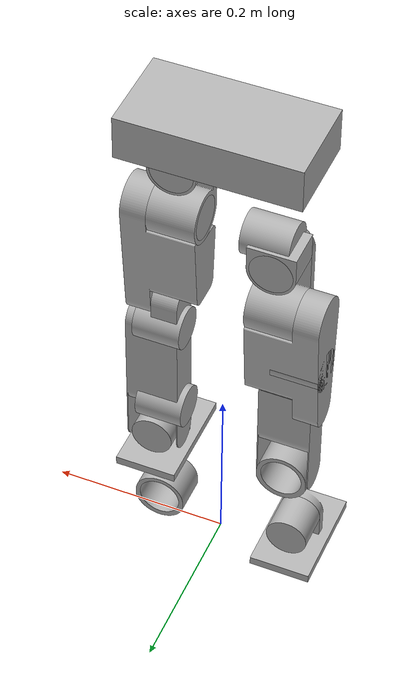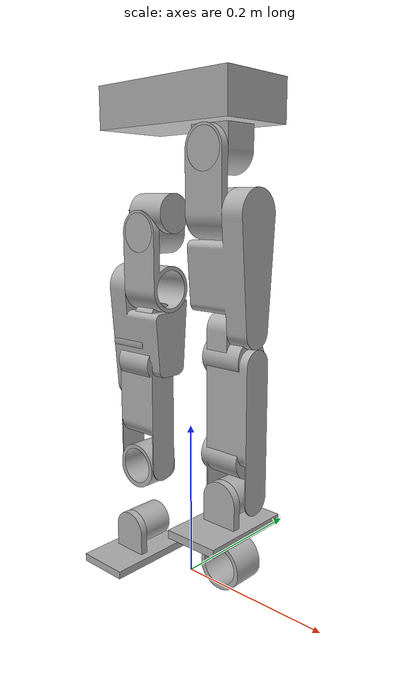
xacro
<?xml version="1.0" ?>
<robot name="URDF_F" xmlns:xacro="http://www.ros.org/wiki/xacro">

<xacro:include filename="$(find URDF_F_description)/urdf/materials.xacro" />
<xacro:include filename="$(find URDF_F_description)/urdf/URDF_F.trans" />
<xacro:include filename="$(find URDF_F_description)/urdf/URDF_F.gazebo" />
<link name="base_link">
  <inertial>
    <origin xyz="-0.009999999999993764 0.0029999999999999498 0.491999999999998" rpy="0 0 0"/>
    <mass value="1.9999999999999996"/>
    <inertia ixx="0.002083" iyy="0.007083" izz="0.008333" ixy="0.0" iyz="0.0" ixz="0.0"/>
  </inertial>
  <visual>
    <origin xyz="0 0 0" rpy="0 0 0"/>
    <geometry>
      <mesh filename="file://$(find URDF_F_description)/meshes/base_link.stl" scale="0.001 0.001 0.001"/>
    </geometry>
    <material name="silver"/>
  </visual>
  <collision>
    <origin xyz="0 0 0" rpy="0 0 0"/>
    <geometry>
      <mesh filename="file://$(find URDF_F_description)/meshes/base_link.stl" scale="0.001 0.001 0.001"/>
    </geometry>
  </collision>
</link>

<link name="thighJR_L_1">
  <inertial>
    <origin xyz="0.06000000000000488 -0.0030000000000000564 -0.4857321228340379" rpy="0 0 0"/>
    <mass value="0.06"/>
    <inertia ixx="2.9e-05" iyy="4.2e-05" izz="3.3e-05" ixy="-0.0" iyz="0.0" ixz="0.0"/>
  </inertial>
  <visual>
    <origin xyz="0.02 -0.006 -0.934" rpy="0 0 0"/>
    <geometry>
      <mesh filename="file://$(find URDF_F_description)/meshes/thighJR_L_1.stl" scale="0.001 0.001 0.001"/>
    </geometry>
    <material name="silver"/>
  </visual>
  <collision>
    <origin xyz="0.02 -0.006 -0.934" rpy="0 0 0"/>
    <geometry>
      <mesh filename="file://$(find URDF_F_description)/meshes/thighJR_L_1.stl" scale="0.001 0.001 0.001"/>
    </geometry>
  </collision>
</link>

<link name="AK45-36_trL_1">
  <inertial>
    <origin xyz="-0.03999999999999455 0.013999999999999964 -0.4670000000000036" rpy="0 0 0"/>
    <mass value="0.34"/>
    <inertia ixx="0.000132" iyy="0.000099" izz="0.000132" ixy="-0.0" iyz="0.0" ixz="0.0"/>
  </inertial>
  <visual>
    <origin xyz="-0.08 0.016 -0.907" rpy="0 0 0"/>
    <geometry>
      <mesh filename="file://$(find URDF_F_description)/meshes/AK45-36_trL_1.stl" scale="0.001 0.001 0.001"/>
    </geometry>
    <material name="silver"/>
  </visual>
  <collision>
    <origin xyz="-0.08 0.016 -0.907" rpy="0 0 0"/>
    <geometry>
      <mesh filename="file://$(find URDF_F_description)/meshes/AK45-36_trL_1.stl" scale="0.001 0.001 0.001"/>
    </geometry>
  </collision>
</link>

<link name="thigh_L_1">
  <inertial>
    <origin xyz="-0.00539746230814965 0.00038172214782945324 -0.059989569173891755" rpy="0 0 0"/>
    <mass value="0.5"/>
    <inertia ixx="0.000862" iyy="0.001054" izz="0.000388" ixy="3.9e-06" iyz="-6.7e-06" ixz="-6.4e-05"/>
  </inertial>
  <visual>
    <origin xyz="-0.067 0.0 -0.37" rpy="0 0 0"/>
    <geometry>
      <mesh filename="file://$(find URDF_F_description)/meshes/thigh_L_1.stl" scale="0.001 0.001 0.001"/>
    </geometry>
    <material name="silver"/>
  </visual>
  <collision>
    <origin xyz="-0.067 0.0 -0.37" rpy="0 0 0"/>
    <geometry>
      <mesh filename="file://$(find URDF_F_description)/meshes/thigh_L_1.stl" scale="0.001 0.001 0.001"/>
    </geometry>
  </collision>
</link>

<link name="AK45-36_kpL_1">
  <inertial>
    <origin xyz="-0.09400000000000365 -5.800915303664527e-17 -0.43961500000000436" rpy="0 0 0"/>
    <mass value="0.4"/>
    <inertia ixx="0.000116" iyy="0.000155" izz="0.000155" ixy="-0.0" iyz="0.0" ixz="0.0"/>
  </inertial>
  <visual>
    <origin xyz="-0.16275 0.0 -0.739615" rpy="0 0 0"/>
    <geometry>
      <mesh filename="file://$(find URDF_F_description)/meshes/AK45-36_kpL_1.stl" scale="0.001 0.001 0.001"/>
    </geometry>
    <material name="silver"/>
  </visual>
  <collision>
    <origin xyz="-0.16275 0.0 -0.739615" rpy="0 0 0"/>
    <geometry>
      <mesh filename="file://$(find URDF_F_description)/meshes/AK45-36_kpL_1.stl" scale="0.001 0.001 0.001"/>
    </geometry>
  </collision>
</link>

<link name="calf_L_1">
  <inertial>
    <origin xyz="-0.0018470097395003188 -8.38633090922969e-17 -0.08050979935301991" rpy="0 0 0"/>
    <mass value="0.5"/>
    <inertia ixx="0.001191" iyy="0.00129" izz="0.000211" ixy="-0.0" iyz="0.0" ixz="7.1e-05"/>
  </inertial>
  <visual>
    <origin xyz="-0.067 0.0 -0.24" rpy="0 0 0"/>
    <geometry>
      <mesh filename="file://$(find URDF_F_description)/meshes/calf_L_1.stl" scale="0.001 0.001 0.001"/>
    </geometry>
    <material name="silver"/>
  </visual>
  <collision>
    <origin xyz="-0.067 0.0 -0.24" rpy="0 0 0"/>
    <geometry>
      <mesh filename="file://$(find URDF_F_description)/meshes/calf_L_1.stl" scale="0.001 0.001 0.001"/>
    </geometry>
  </collision>
</link>

<link name="footJ_L_1">
  <inertial>
    <origin xyz="-1.4627188349436437e-14 -1.072264026970011e-16 -0.0022808396255029964" rpy="0 0 0"/>
    <mass value="0.06"/>
    <inertia ixx="3.1e-05" iyy="4.2e-05" izz="3.1e-05" ixy="-0.0" iyz="-0.0" ixz="0.0"/>
  </inertial>
  <visual>
    <origin xyz="-0.067 0.0 -0.04" rpy="0 0 0"/>
    <geometry>
      <mesh filename="file://$(find URDF_F_description)/meshes/footJ_L_1.stl" scale="0.001 0.001 0.001"/>
    </geometry>
    <material name="silver"/>
  </visual>
  <collision>
    <origin xyz="-0.067 0.0 -0.04" rpy="0 0 0"/>
    <geometry>
      <mesh filename="file://$(find URDF_F_description)/meshes/footJ_L_1.stl" scale="0.001 0.001 0.001"/>
    </geometry>
  </collision>
</link>

<link name="AK45-10_frL_1">
  <inertial>
    <origin xyz="-1.457167719820518e-14 -9.643358654519792e-17 7.077671781985373e-16" rpy="0 0 0"/>
    <mass value="0.24"/>
    <inertia ixx="7.7e-05" iyy="7.4e-05" izz="7.7e-05" ixy="0.0" iyz="0.0" ixz="-0.0"/>
  </inertial>
  <visual>
    <origin xyz="-0.067 0.0 -0.04" rpy="0 0 0"/>
    <geometry>
      <mesh filename="file://$(find URDF_F_description)/meshes/AK45-10_frL_1.stl" scale="0.001 0.001 0.001"/>
    </geometry>
    <material name="silver"/>
  </visual>
  <collision>
    <origin xyz="-0.067 0.0 -0.04" rpy="0 0 0"/>
    <geometry>
      <mesh filename="file://$(find URDF_F_description)/meshes/AK45-10_frL_1.stl" scale="0.001 0.001 0.001"/>
    </geometry>
  </collision>
</link>

<link name="foot_L_1">
  <inertial>
    <origin xyz="-1.5459855617905305e-14 9.755025872117476e-05 -0.028610141842179894" rpy="0 0 0"/>
    <mass value="0.3"/>
    <inertia ixx="0.00035" iyy="0.000168" izz="0.0004" ixy="0.0" iyz="1e-05" ixz="0.0"/>
  </inertial>
  <visual>
    <origin xyz="-0.067 0.0215 -0.04" rpy="0 0 0"/>
    <geometry>
      <mesh filename="file://$(find URDF_F_description)/meshes/foot_L_1.stl" scale="0.001 0.001 0.001"/>
    </geometry>
    <material name="silver"/>
  </visual>
  <collision>
    <origin xyz="-0.067 0.0215 -0.04" rpy="0 0 0"/>
    <geometry>
      <mesh filename="file://$(find URDF_F_description)/meshes/foot_L_1.stl" scale="0.001 0.001 0.001"/>
    </geometry>
  </collision>
</link>

<link name="thighJ_L_1">
  <inertial>
    <origin xyz="3.677613769070831e-15 0.020776165475540002 -0.056454508231575606" rpy="0 0 0"/>
    <mass value="0.06"/>
    <inertia ixx="6.7e-05" iyy="6e-05" izz="3.9e-05" ixy="0.0" iyz="1.3e-05" ixz="-0.0"/>
  </inertial>
  <visual>
    <origin xyz="-0.04 0.029 -0.44" rpy="0 0 0"/>
    <geometry>
      <mesh filename="file://$(find URDF_F_description)/meshes/thighJ_L_1.stl" scale="0.001 0.001 0.001"/>
    </geometry>
    <material name="silver"/>
  </visual>
  <collision>
    <origin xyz="-0.04 0.029 -0.44" rpy="0 0 0"/>
    <geometry>
      <mesh filename="file://$(find URDF_F_description)/meshes/thighJ_L_1.stl" scale="0.001 0.001 0.001"/>
    </geometry>
  </collision>
</link>

<link name="AK45-36_tpL_1">
  <inertial>
    <origin xyz="-3.642919299551295e-15 -4.371503159459072e-17 -3.3306690738754696e-15" rpy="0 0 0"/>
    <mass value="0.34"/>
    <inertia ixx="0.000099" iyy="0.000132" izz="0.000132" ixy="-0.0" iyz="0.0" ixz="0.0"/>
  </inertial>
  <visual>
    <origin xyz="-0.04 0.0 -0.37" rpy="0 0 0"/>
    <geometry>
      <mesh filename="file://$(find URDF_F_description)/meshes/AK45-36_tpL_1.stl" scale="0.001 0.001 0.001"/>
    </geometry>
    <material name="silver"/>
  </visual>
  <collision>
    <origin xyz="-0.04 0.0 -0.37" rpy="0 0 0"/>
    <geometry>
      <mesh filename="file://$(find URDF_F_description)/meshes/AK45-36_tpL_1.stl" scale="0.001 0.001 0.001"/>
    </geometry>
  </collision>
</link>

<link name="AK45-36_fpL_1">
  <inertial>
    <origin xyz="-0.037076000000005466 -7.299716386909578e-17 -0.30000000000000426" rpy="0 0 0"/>
    <mass value="0.4"/>
    <inertia ixx="0.000116" iyy="0.000155" izz="0.000155" ixy="-0.0" iyz="0.0" ixz="0.0"/>
  </inertial>
  <visual>
    <origin xyz="-0.104076 0.0 -0.48" rpy="0 0 0"/>
    <geometry>
      <mesh filename="file://$(find URDF_F_description)/meshes/AK45-36_fpL_1.stl" scale="0.001 0.001 0.001"/>
    </geometry>
    <material name="silver"/>
  </visual>
  <collision>
    <origin xyz="-0.104076 0.0 -0.48" rpy="0 0 0"/>
    <geometry>
      <mesh filename="file://$(find URDF_F_description)/meshes/AK45-36_fpL_1.stl" scale="0.001 0.001 0.001"/>
    </geometry>
  </collision>
</link>

<link name="thighJR_R_1">
  <inertial>
    <origin xyz="-0.039999999999994526 -0.0030000000000000296 -0.48573212283403633" rpy="0 0 0"/>
    <mass value="0.06"/>
    <inertia ixx="2.9e-05" iyy="4.2e-05" izz="3.3e-05" ixy="-0.0" iyz="0.0" ixz="-0.0"/>
  </inertial>
  <visual>
    <origin xyz="0.02 -0.006 -0.934" rpy="0 0 0"/>
    <geometry>
      <mesh filename="file://$(find URDF_F_description)/meshes/thighJR_R_1.stl" scale="0.001 0.001 0.001"/>
    </geometry>
    <material name="silver"/>
  </visual>
  <collision>
    <origin xyz="0.02 -0.006 -0.934" rpy="0 0 0"/>
    <geometry>
      <mesh filename="file://$(find URDF_F_description)/meshes/thighJR_R_1.stl" scale="0.001 0.001 0.001"/>
    </geometry>
  </collision>
</link>

<link name="AK45-36_trR_1">
  <inertial>
    <origin xyz="0.06000000000000547 0.013999999999999986 -0.46700000000000214" rpy="0 0 0"/>
    <mass value="0.34"/>
    <inertia ixx="0.000132" iyy="0.000099" izz="0.000132" ixy="-0.0" iyz="0.0" ixz="0.0"/>
  </inertial>
  <visual>
    <origin xyz="0.12 0.016 -0.907" rpy="0 0 0"/>
    <geometry>
      <mesh filename="file://$(find URDF_F_description)/meshes/AK45-36_trR_1.stl" scale="0.001 0.001 0.001"/>
    </geometry>
    <material name="silver"/>
  </visual>
  <collision>
    <origin xyz="0.12 0.016 -0.907" rpy="0 0 0"/>
    <geometry>
      <mesh filename="file://$(find URDF_F_description)/meshes/AK45-36_trR_1.stl" scale="0.001 0.001 0.001"/>
    </geometry>
  </collision>
</link>

<link name="thigh_R_1">
  <inertial>
    <origin xyz="0.005397462308149595 0.000381722147829493 -0.05998956917388981" rpy="0 0 0"/>
    <mass value="0.5203598167159027"/>
    <inertia ixx="0.000862" iyy="0.001054" izz="0.000388" ixy="-3.9e-06" iyz="-6.7e-06" ixz="6.4e-05"/>
  </inertial>
  <visual>
    <origin xyz="0.087 0.0 -0.37" rpy="0 0 0"/>
    <geometry>
      <mesh filename="file://$(find URDF_F_description)/meshes/thigh_R_1.stl" scale="0.001 0.001 0.001"/>
    </geometry>
    <material name="silver"/>
  </visual>
  <collision>
    <origin xyz="0.087 0.0 -0.37" rpy="0 0 0"/>
    <geometry>
      <mesh filename="file://$(find URDF_F_description)/meshes/thigh_R_1.stl" scale="0.001 0.001 0.001"/>
    </geometry>
  </collision>
</link>

<link name="AK45-36_kpR_1">
  <inertial>
    <origin xyz="0.11400000000000549 -1.804112415013964e-17 -0.44000000000000217" rpy="0 0 0"/>
    <mass value="0.4"/>
    <inertia ixx="0.000116" iyy="0.000155" izz="0.000155" ixy="0.0" iyz="0.0" ixz="-0.0"/>
  </inertial>
  <visual>
    <origin xyz="0.20275 0.0 -0.74" rpy="0 0 0"/>
    <geometry>
      <mesh filename="file://$(find URDF_F_description)/meshes/AK45-36_kpR_1.stl" scale="0.001 0.001 0.001"/>
    </geometry>
    <material name="silver"/>
  </visual>
  <collision>
    <origin xyz="0.20275 0.0 -0.74" rpy="0 0 0"/>
    <geometry>
      <mesh filename="file://$(find URDF_F_description)/meshes/AK45-36_kpR_1.stl" scale="0.001 0.001 0.001"/>
    </geometry>
  </collision>
</link>

<link name="calf_R_1">
  <inertial>
    <origin xyz="0.0018470097394886892 -9.39645718218383e-18 -0.08050979935301789" rpy="0 0 0"/>
    <mass value="0.7036237937535099"/>
    <inertia ixx="0.001191" iyy="0.00129" izz="0.000211" ixy="0.0" iyz="0.0" ixz="-7.1e-05"/>
  </inertial>
  <visual>
    <origin xyz="0.087 0.0 -0.24" rpy="0 0 0"/>
    <geometry>
      <mesh filename="file://$(find URDF_F_description)/meshes/calf_R_1.stl" scale="0.001 0.001 0.001"/>
    </geometry>
    <material name="silver"/>
  </visual>
  <collision>
    <origin xyz="0.087 0.0 -0.24" rpy="0 0 0"/>
    <geometry>
      <mesh filename="file://$(find URDF_F_description)/meshes/calf_R_1.stl" scale="0.001 0.001 0.001"/>
    </geometry>
  </collision>
</link>

<link name="AK45-36_fpR_1">
  <inertial>
    <origin xyz="0.05699999999999819 -1.5265566588587645e-17 -0.30000000000000215" rpy="0 0 0"/>
    <mass value="0.4"/>
    <inertia ixx="0.000116" iyy="0.000155" izz="0.000155" ixy="0.0" iyz="0.0" ixz="0.0"/>
  </inertial>
  <visual>
    <origin xyz="0.144 0.0 -0.48" rpy="0 0 0"/>
    <geometry>
      <mesh filename="file://$(find URDF_F_description)/meshes/AK45-36_fpR_1.stl" scale="0.001 0.001 0.001"/>
    </geometry>
    <material name="silver"/>
  </visual>
  <collision>
    <origin xyz="0.144 0.0 -0.48" rpy="0 0 0"/>
    <geometry>
      <mesh filename="file://$(find URDF_F_description)/meshes/AK45-36_fpR_1.stl" scale="0.001 0.001 0.001"/>
    </geometry>
  </collision>
</link>

<link name="footJ_R_1">
  <inertial>
    <origin xyz="-1.8041124150158794e-15 -1.812923782858116e-17 -0.0022808396255108096" rpy="0 0 0"/>
    <mass value="0.06"/>
    <inertia ixx="3.1e-05" iyy="4.2e-05" izz="3.1e-05" ixy="-0.0" iyz="-0.0" ixz="0.0"/>
  </inertial>
  <visual>
    <origin xyz="0.087 0.0 -0.04" rpy="0 0 0"/>
    <geometry>
      <mesh filename="file://$(find URDF_F_description)/meshes/footJ_R_1.stl" scale="0.001 0.001 0.001"/>
    </geometry>
    <material name="silver"/>
  </visual>
  <collision>
    <origin xyz="0.087 0.0 -0.04" rpy="0 0 0"/>
    <geometry>
      <mesh filename="file://$(find URDF_F_description)/meshes/footJ_R_1.stl" scale="0.001 0.001 0.001"/>
    </geometry>
  </collision>
</link>

<link name="AK45-10_R_1">
  <inertial>
    <origin xyz="-1.8041124150158794e-15 -7.615744575185394e-18 -7.098488463697095e-15" rpy="0 0 0"/>
    <mass value="0.24"/>
    <inertia ixx="7.7e-05" iyy="7.4e-05" izz="7.7e-05" ixy="0.0" iyz="-0.0" ixz="-0.0"/>
  </inertial>
  <visual>
    <origin xyz="0.087 0.0 -0.04" rpy="0 0 0"/>
    <geometry>
      <mesh filename="file://$(find URDF_F_description)/meshes/AK45-10_R_1.stl" scale="0.001 0.001 0.001"/>
    </geometry>
    <material name="silver"/>
  </visual>
  <collision>
    <origin xyz="0.087 0.0 -0.04" rpy="0 0 0"/>
    <geometry>
      <mesh filename="file://$(find URDF_F_description)/meshes/AK45-10_R_1.stl" scale="0.001 0.001 0.001"/>
    </geometry>
  </collision>
</link>

<link name="thighJ_R_1">
  <inertial>
    <origin xyz="5.460909502374989e-15 0.02077616547536233 -0.05645450823097037" rpy="0 0 0"/>
    <mass value="0.06"/>
    <inertia ixx="6.7e-05" iyy="6e-05" izz="3.9e-05" ixy="0.0" iyz="1.3e-05" ixz="0.0"/>
  </inertial>
  <visual>
    <origin xyz="0.06 0.029 -0.44" rpy="0 0 0"/>
    <geometry>
      <mesh filename="file://$(find URDF_F_description)/meshes/thighJ_R_1.stl" scale="0.001 0.001 0.001"/>
    </geometry>
    <material name="silver"/>
  </visual>
  <collision>
    <origin xyz="0.06 0.029 -0.44" rpy="0 0 0"/>
    <geometry>
      <mesh filename="file://$(find URDF_F_description)/meshes/thighJ_R_1.stl" scale="0.001 0.001 0.001"/>
    </geometry>
  </collision>
</link>

<link name="AK45-36_tpR_1">
  <inertial>
    <origin xyz="5.474787290182803e-15 -2.5951463200588205e-17 -2.1094237467877974e-15" rpy="0 0 0"/>
    <mass value="0.34"/>
    <inertia ixx="0.000099" iyy="0.000155" izz="0.000155" ixy="0.0" iyz="0.0" ixz="0.0"/>
  </inertial>
  <visual>
    <origin xyz="0.06 0.0 -0.37" rpy="0 0 0"/>
    <geometry>
      <mesh filename="file://$(find URDF_F_description)/meshes/AK45-36_tpR_1.stl" scale="0.001 0.001 0.001"/>
    </geometry>
    <material name="silver"/>
  </visual>
  <collision>
    <origin xyz="0.06 0.0 -0.37" rpy="0 0 0"/>
    <geometry>
      <mesh filename="file://$(find URDF_F_description)/meshes/AK45-36_tpR_1.stl" scale="0.001 0.001 0.001"/>
    </geometry>
  </collision>
</link>

<link name="foot_R_v1_1">
  <inertial>
    <origin xyz="-1.8041124150158794e-15 9.755025872120252e-05 -0.02861014184218772" rpy="0 0 0"/>
    <mass value="0.3"/>
    <inertia ixx="0.00035" iyy="0.000168" izz="0.0004" ixy="-0.0" iyz="1e-05" ixz="0.0"/>
  </inertial>
  <visual>
    <origin xyz="0.087 0.0215 -0.04" rpy="0 0 0"/>
    <geometry>
      <mesh filename="file://$(find URDF_F_description)/meshes/foot_R_v1_1.stl" scale="0.001 0.001 0.001"/>
    </geometry>
    <material name="silver"/>
  </visual>
  <collision>
    <origin xyz="0.087 0.0215 -0.04" rpy="0 0 0"/>
    <geometry>
      <mesh filename="file://$(find URDF_F_description)/meshes/foot_R_v1_1.stl" scale="0.001 0.001 0.001"/>
    </geometry>
  </collision>
</link>

<joint name="Rigid 12" type="fixed">
  <origin xyz="-0.02 0.006 0.934" rpy="0 0 0"/>
  <parent link="base_link"/>
  <child link="thighJR_L_1"/>
</joint>

<joint name="Rigid 14" type="fixed">
  <origin xyz="0.1 -0.022 -0.027" rpy="0 0 0"/>
  <parent link="thighJR_L_1"/>
  <child link="AK45-36_trL_1"/>
</joint>

<joint name="Revolute 19" type="revolute">
  <origin xyz="0.027 0.0 0.0" rpy="0 0 0"/>
  <parent link="AK45-36_tpL_1"/>
  <child link="thigh_L_1"/>
  <axis xyz="1.0 -0.0 -0.0"/>
  <limit upper="1.570796" lower="-1.570796" effort="100" velocity="100"/>
</joint>

<joint name="Rigid 20" type="fixed">
  <origin xyz="0.09575 0.0 0.369615" rpy="0 0 0"/>
  <parent link="thigh_L_1"/>
  <child link="AK45-36_kpL_1"/>
</joint>

<joint name="Revolute 21" type="revolute">
  <origin xyz="0.0 0.0 -0.13" rpy="0 0 0"/>
  <parent link="thigh_L_1"/>
  <child link="calf_L_1"/>
  <axis xyz="1.0 0.0 -0.0"/>
  <limit upper="1.570796" lower="-1.570796" effort="100" velocity="100"/>
</joint>

<joint name="Revolute 23" type="revolute">
  <origin xyz="0.0 0.0 -0.2" rpy="0 0 0"/>
  <parent link="calf_L_1"/>
  <child link="footJ_L_1"/>
  <axis xyz="1.0 -0.0 -0.0"/>
  <limit upper="1.570796" lower="-1.570796" effort="100" velocity="100"/>
</joint>

<joint name="Rigid 24" type="fixed">
  <origin xyz="0.0 0.0 0.0" rpy="0 0 0"/>
  <parent link="footJ_L_1"/>
  <child link="AK45-10_frL_1"/>
</joint>

<joint name="Revolute 25" type="revolute">
  <origin xyz="0.0 -0.0215 0.0" rpy="0 0 0"/>
  <parent link="AK45-10_frL_1"/>
  <child link="foot_L_1"/>
  <axis xyz="0.0 -1.0 0.0"/>
  <limit upper="1.570796" lower="-1.570796" effort="100" velocity="100"/>
</joint>

<joint name="Revolute 26" type="revolute">
  <origin xyz="-0.04 -0.013 -0.467" rpy="0 0 0"/>
  <parent link="AK45-36_trL_1"/>
  <child link="thighJ_L_1"/>
  <axis xyz="0.0 -1.0 -0.0"/>
  <limit upper="1.570796" lower="-1.570796" effort="100" velocity="100"/>
</joint>

<joint name="Rigid 27" type="fixed">
  <origin xyz="0.0 0.029 -0.07" rpy="0 0 0"/>
  <parent link="thighJ_L_1"/>
  <child link="AK45-36_tpL_1"/>
</joint>

<joint name="Rigid 35" type="fixed">
  <origin xyz="0.037076 0.0 0.24" rpy="0 0 0"/>
  <parent link="calf_L_1"/>
  <child link="AK45-36_fpL_1"/>
</joint>

<joint name="Rigid 40" type="fixed">
  <origin xyz="-0.02 0.006 0.934" rpy="0 0 0"/>
  <parent link="base_link"/>
  <child link="thighJR_R_1"/>
</joint>

<joint name="Rigid 41" type="fixed">
  <origin xyz="-0.1 -0.022 -0.027" rpy="0 0 0"/>
  <parent link="thighJR_R_1"/>
  <child link="AK45-36_trR_1"/>
</joint>

<joint name="Revolute 44" type="revolute">
  <origin xyz="-0.027 0.0 0.0" rpy="0 0 0"/>
  <parent link="AK45-36_tpR_1"/>
  <child link="thigh_R_1"/>
  <axis xyz="-1.0 -0.0 -0.0"/>
  <limit upper="1.570796" lower="-1.570796" effort="100" velocity="100"/>
</joint>

<joint name="Rigid 45" type="fixed">
  <origin xyz="-0.11575 0.0 0.37" rpy="0 0 0"/>
  <parent link="thigh_R_1"/>
  <child link="AK45-36_kpR_1"/>
</joint>

<joint name="Revolute 46" type="revolute">
  <origin xyz="0.0 0.0 -0.13" rpy="0 0 0"/>
  <parent link="thigh_R_1"/>
  <child link="calf_R_1"/>
  <axis xyz="1.0 0.0 0.0"/>
  <limit upper="1.570796" lower="-1.570796" effort="100" velocity="100"/>
</joint>

<joint name="Rigid 47" type="fixed">
  <origin xyz="-0.057 0.0 0.24" rpy="0 0 0"/>
  <parent link="calf_R_1"/>
  <child link="AK45-36_fpR_1"/>
</joint>

<joint name="Revolute 48" type="revolute">
  <origin xyz="0.0 0.0 -0.2" rpy="0 0 0"/>
  <parent link="calf_R_1"/>
  <child link="footJ_R_1"/>
  <axis xyz="-1.0 -0.0 -0.0"/>
  <limit upper="1.570796" lower="-1.570796" effort="100" velocity="100"/>
</joint>

<joint name="Rigid 49" type="fixed">
  <origin xyz="0.0 0.0 0.0" rpy="0 0 0"/>
  <parent link="footJ_R_1"/>
  <child link="AK45-10_R_1"/>
</joint>

<joint name="Revolute 51" type="revolute">
  <origin xyz="0.06 -0.013 -0.467" rpy="0 0 0"/>
  <parent link="AK45-36_trR_1"/>
  <child link="thighJ_R_1"/>
  <axis xyz="-0.0 -1.0 -0.0"/>
  <limit upper="1.570796" lower="-1.570796" effort="100" velocity="100"/>
</joint>

<joint name="Rigid 52" type="fixed">
  <origin xyz="0.0 0.029 -0.07" rpy="0 0 0"/>
  <parent link="thighJ_R_1"/>
  <child link="AK45-36_tpR_1"/>
</joint>

<joint name="Revolute 53" type="revolute">
  <origin xyz="0.0 -0.0215 0.0" rpy="0 0 0"/>
  <parent link="AK45-10_R_1"/>
  <child link="foot_R_v1_1"/>
  <axis xyz="-0.0 -1.0 -0.0"/>
  <limit upper="1.570796" lower="-1.570796" effort="100" velocity="100"/>
</joint>

</robot>

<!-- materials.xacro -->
<robot name="URDF_F" xmlns:xacro="http://www.ros.org/wiki/xacro" >

<material name="silver">
  <color rgba="0.700 0.700 0.700 1.000"/>
</material>

</robot>

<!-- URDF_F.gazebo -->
<robot name="URDF_F" xmlns:xacro="http://www.ros.org/wiki/xacro" >

<xacro:property name="body_color" value="Gazebo/Silver" />

<gazebo>
  <plugin name="control" filename="libgazebo_ros_control.so"/>
</gazebo>
<gazebo reference="base_link">
  <material>${body_color}</material>
  <mu1>0.2</mu1>
  <mu2>0.2</mu2>
  <self_collide>true</self_collide>
  <gravity>true</gravity>
</gazebo>

<gazebo reference="thighJR_L_1">
  <material>${body_color}</material>
  <mu1>0.2</mu1>
  <mu2>0.2</mu2>
  <self_collide>true</self_collide>
</gazebo>

<gazebo reference="AK45-36_trL_1">
  <material>${body_color}</material>
  <mu1>0.2</mu1>
  <mu2>0.2</mu2>
  <self_collide>true</self_collide>
</gazebo>

<gazebo reference="thigh_L_1">
  <material>${body_color}</material>
  <mu1>0.2</mu1>
  <mu2>0.2</mu2>
  <self_collide>true</self_collide>
</gazebo>

<gazebo reference="AK45-36_kpL_1">
  <material>${body_color}</material>
  <mu1>0.2</mu1>
  <mu2>0.2</mu2>
  <self_collide>true</self_collide>
</gazebo>

<gazebo reference="calf_L_1">
  <material>${body_color}</material>
  <mu1>0.2</mu1>
  <mu2>0.2</mu2>
  <self_collide>true</self_collide>
</gazebo>

<gazebo reference="footJ_L_1">
  <material>${body_color}</material>
  <mu1>0.2</mu1>
  <mu2>0.2</mu2>
  <self_collide>true</self_collide>
</gazebo>

<gazebo reference="AK45-10_frL_1">
  <material>${body_color}</material>
  <mu1>0.2</mu1>
  <mu2>0.2</mu2>
  <self_collide>true</self_collide>
</gazebo>

<gazebo reference="foot_L_1">
  <material>${body_color}</material>
  <mu1>0.2</mu1>
  <mu2>0.2</mu2>
  <self_collide>true</self_collide>
</gazebo>

<gazebo reference="thighJ_L_1">
  <material>${body_color}</material>
  <mu1>0.2</mu1>
  <mu2>0.2</mu2>
  <self_collide>true</self_collide>
</gazebo>

<gazebo reference="AK45-36_tpL_1">
  <material>${body_color}</material>
  <mu1>0.2</mu1>
  <mu2>0.2</mu2>
  <self_collide>true</self_collide>
</gazebo>

<gazebo reference="AK45-36_fpL_1">
  <material>${body_color}</material>
  <mu1>0.2</mu1>
  <mu2>0.2</mu2>
  <self_collide>true</self_collide>
</gazebo>

<gazebo reference="thighJR_R_1">
  <material>${body_color}</material>
  <mu1>0.2</mu1>
  <mu2>0.2</mu2>
  <self_collide>true</self_collide>
</gazebo>

<gazebo reference="AK45-36_trR_1">
  <material>${body_color}</material>
  <mu1>0.2</mu1>
  <mu2>0.2</mu2>
  <self_collide>true</self_collide>
</gazebo>

<gazebo reference="thigh_R_1">
  <material>${body_color}</material>
  <mu1>0.2</mu1>
  <mu2>0.2</mu2>
  <self_collide>true</self_collide>
</gazebo>

<gazebo reference="AK45-36_kpR_1">
  <material>${body_color}</material>
  <mu1>0.2</mu1>
  <mu2>0.2</mu2>
  <self_collide>true</self_collide>
</gazebo>

<gazebo reference="calf_R_1">
  <material>${body_color}</material>
  <mu1>0.2</mu1>
  <mu2>0.2</mu2>
  <self_collide>true</self_collide>
</gazebo>

<gazebo reference="AK45-36_fpR_1">
  <material>${body_color}</material>
  <mu1>0.2</mu1>
  <mu2>0.2</mu2>
  <self_collide>true</self_collide>
</gazebo>

<gazebo reference="footJ_R_1">
  <material>${body_color}</material>
  <mu1>0.2</mu1>
  <mu2>0.2</mu2>
  <self_collide>true</self_collide>
</gazebo>

<gazebo reference="AK45-10_R_1">
  <material>${body_color}</material>
  <mu1>0.2</mu1>
  <mu2>0.2</mu2>
  <self_collide>true</self_collide>
</gazebo>

<gazebo reference="thighJ_R_1">
  <material>${body_color}</material>
  <mu1>0.2</mu1>
  <mu2>0.2</mu2>
  <self_collide>true</self_collide>
</gazebo>

<gazebo reference="AK45-36_tpR_1">
  <material>${body_color}</material>
  <mu1>0.2</mu1>
  <mu2>0.2</mu2>
  <self_collide>true</self_collide>
</gazebo>

<gazebo reference="foot_R_v1_1">
  <material>${body_color}</material>
  <mu1>0.2</mu1>
  <mu2>0.2</mu2>
  <self_collide>true</self_collide>
</gazebo>

</robot>
